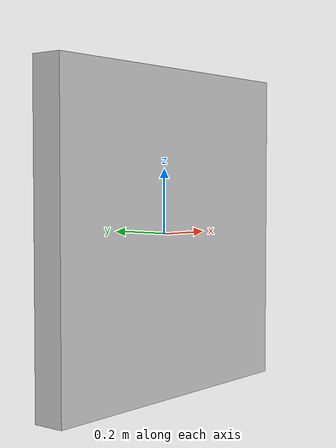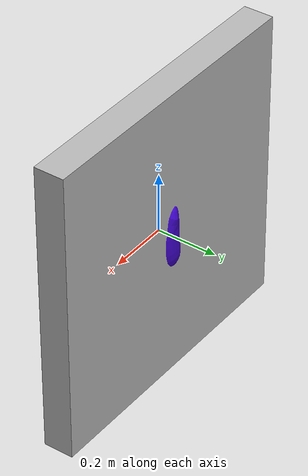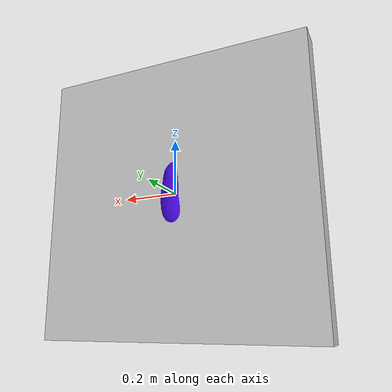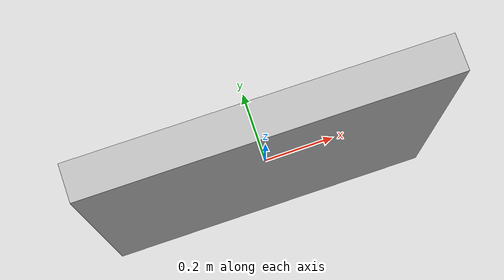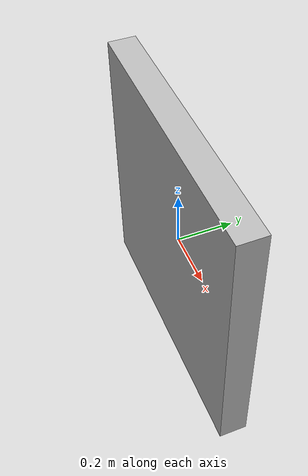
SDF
<?xml version='1.0'?>
<sdf version="1.6">
  <model name="eggplant_1">
    <static>true</static>
    <link name="eggplant_1">
      <collision name="collision">
        <geometry>
          <box>
            <size>1 1 1</size>
          </box>
        </geometry>
      </collision>
      <visual name="visual">
        <geometry>
          <mesh>
            <scale>1 1 1</scale>
            <uri>model://icuas24/eggplant_1.dae</uri>
          </mesh>
        </geometry>
      </visual>
    </link>
  </model>
</sdf>
